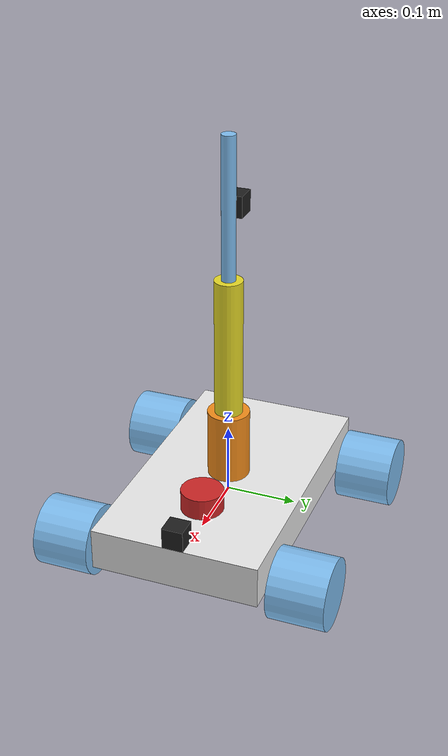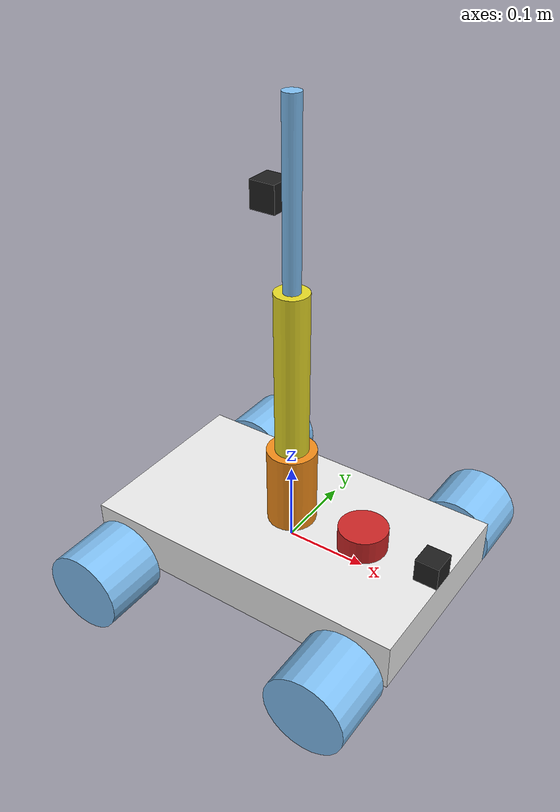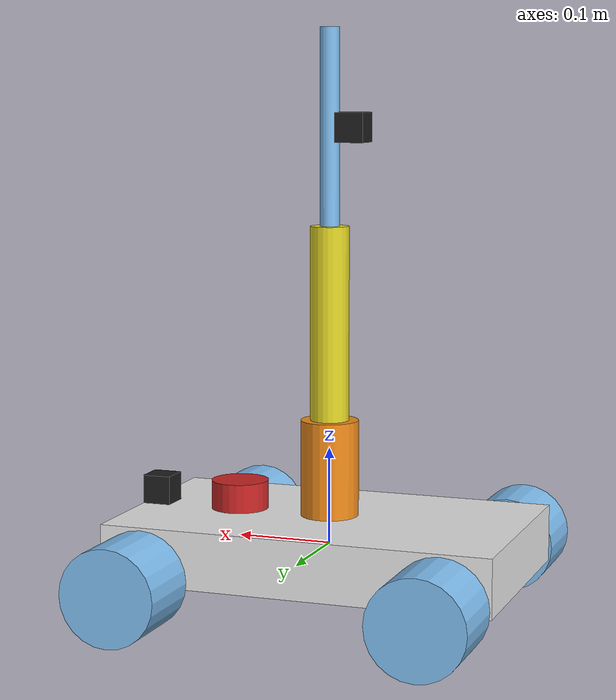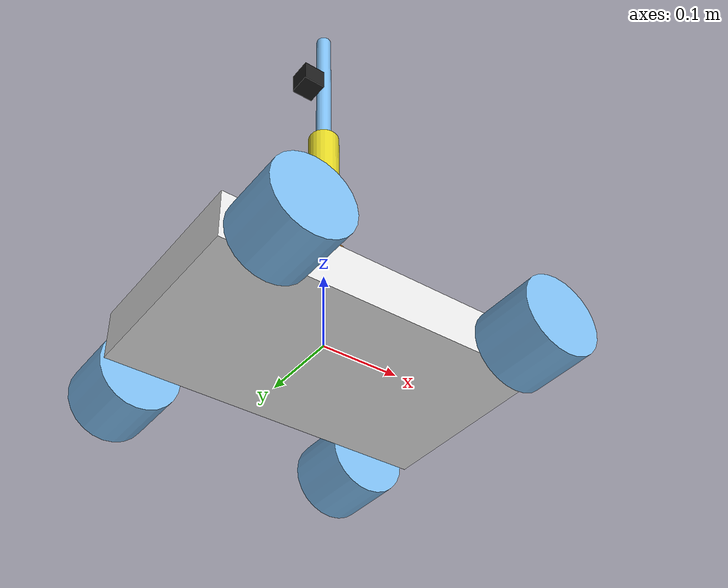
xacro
<?xml version="1.0" encoding="utf-8"?>
<robot name="arm_car" xmlns:xacro="http://ros.org/wiki/xacro">
    <xacro:property name="car_leng" value="0.410"/>
    <xacro:property name="car_width" value="0.238"/>
    <xacro:property name="car_height" value="0.06"/>
    <xacro:property name="car_mass" value="6.1"/>
    <xacro:property name="PI" value="3.1415926535897931"/>
    <xacro:property name="wheel_radius" value="0.05"/>
    <xacro:property name="wheel_height" value="0.08"/>
    <xacro:property name="wheel_mass" value="0.1"/>
    <xacro:property name="camera_low_box_size" value="0.03"/>
    <xacro:property name="laser_box_radius" value="0.03"/>
    <xacro:property name="laser_box_height" value="0.03"/>

    <xacro:property name="arm1_height" value="0.1"/>
    <xacro:property name="arm1_radius" value="0.03"/>
    <xacro:property name="arm1_mass" value="0.5"/>
    <xacro:property name="arm2_height" value="0.2"/>
    <xacro:property name="arm2_radius" value="0.02"/>
    <xacro:property name="arm2_mass" value="0.3"/>
    <xacro:property name="arm3_height" value="0.2"/>
    <xacro:property name="arm3_radius" value="0.01"/>
    <xacro:property name="arm3_mass" value="0.2"/>

    <xacro:include filename="$(find npu_sim)/urdf/car.gazebo.xacro"/>

    <xacro:macro name="wheel" params="wheel_name lr_reflect fb_reflect">
        <link name="${wheel_name}_wheel">
            <visual>
                <origin rpy="0 0 0" xyz="0 0 0"/>
                <geometry>
                    <cylinder length="${wheel_height}" radius="${wheel_radius}"/>
                </geometry>
            </visual>
            <inertial>
                <mass value="${wheel_mass}" />
                <inertia ixx="${wheel_mass*(3*wheel_radius*wheel_radius+wheel_height*wheel_height)/12.0}" ixy="0.0" ixz="0.0"
                         iyy="${wheel_mass*(3*wheel_radius*wheel_radius+wheel_height*wheel_height)/12.0}" iyz="0.0"
                         izz="${wheel_mass*wheel_radius*wheel_radius/2.0}" />
            </inertial>
            <collision>
                <origin rpy="0 0 0" xyz="0 0 0" />
                <geometry>
                    <cylinder length="${wheel_height}" radius="${wheel_radius}"/>
                </geometry>
            </collision>
        </link>

        <joint name="base_${wheel_name}_joint" type="fixed">
            <origin xyz="${0.156*fb_reflect} ${0.169*lr_reflect} -0.02" rpy="${PI/2} 0 0"/>
            <parent link="base_link"/>
            <child link="${wheel_name}_wheel"/>
        </joint>
    </xacro:macro>

    <link name="footprint"/>
    <joint name="foot_base_joint" type="fixed">
        <origin xyz="0 0 0" rpy="0 0 0"/>
        <parent link="footprint"/>
        <child link="base_link"/>
    </joint>
    <link name="base_link">
        <visual>
          <origin rpy="0 0 0" xyz="0 0 0"/>
          <geometry>
            <box size="${car_leng} ${car_width} ${car_height}" />
          </geometry>
        </visual>

        <inertial>
          <mass value="${car_mass}"/>
          <inertia ixx="0.0425" ixy="0.0" ixz="0.0" iyy="0.1136" iyz="0.0" izz="0.1561" />
        </inertial>

        <collision>
          <origin rpy="0 0 0" xyz="0 0 0" />
          <geometry>
            <box size="${car_leng} ${car_width} ${car_height}" />
          </geometry>
        </collision>
    </link>

    <xacro:wheel wheel_name="left_front" lr_reflect="1" fb_reflect="1"/>
    <xacro:wheel wheel_name="right_front" lr_reflect="-1" fb_reflect="1"/>
    <xacro:wheel wheel_name="right_back" lr_reflect="-1" fb_reflect="-1"/>
    <xacro:wheel wheel_name="left_back" lr_reflect="1" fb_reflect="-1"/>

    <link name="imu_link"/>
    <joint name="base_imu_joint" type="fixed">
        <origin xyz="0 0 0" rpy="0 0 0"/>
        <parent link="base_link"/>
        <child link="imu_link"/>
    </joint>

    <joint name="base_laser_joint" type="fixed">
        <origin xyz="0.1 0 ${(car_height+laser_box_height)/2}" rpy="0 0 0"/>
        <parent link="base_link"/>
        <child link="laser_link"/>
    </joint>
    <link name="laser_link">
        <visual>
            <origin rpy="0 0 0" xyz="0 0 0"/>
            <geometry>
                <cylinder radius="${laser_box_radius}" length="${laser_box_height}"/>
            </geometry>
        </visual>
        <inertial>
            <mass value="0.1"/>
            <inertia ixx="${0.1*(3*laser_box_radius*laser_box_radius+laser_box_height*laser_box_height)/12.0}" ixy="0.0" ixz="0.0"
                     iyy="${0.1*(3*laser_box_radius*laser_box_radius+laser_box_height*laser_box_height)/12.0}" iyz="0.0"
                     izz="${0.1*laser_box_radius*laser_box_radius/2.0}" />
        </inertial>
    </link>

    <joint name="base_camera_low_joint" type="continuous">
        <axis xyz="0 1 0"/>
        <origin xyz="${(car_leng-camera_low_box_size)/2} 0 ${(car_height+camera_low_box_size)/2}" rpy="0 0 0"/>
        <parent link="base_link"/>
        <child link="camera_low_link"/>
    </joint>
    <link name="camera_low_link">
        <visual>
            <origin rpy="0 0 0" xyz="0 0 0"/>
            <geometry>
                <box size="${camera_low_box_size} ${camera_low_box_size} ${camera_low_box_size}" />
            </geometry>
        </visual>
        <inertial>
            <mass value="0.05"/>
            <inertia ixx="${0.05*camera_low_box_size*camera_low_box_size/6.0}" ixy="0.0" ixz="0.0"
                     iyy="${0.05*camera_low_box_size*camera_low_box_size/6.0}" iyz="0.0"
                     izz="${0.05*camera_low_box_size*camera_low_box_size/6.0}" />
        </inertial>
    </link>

    <xacro:macro name="arm" params="joint_name last_arm_name arm_name z_shift radius height mass axis">
        <joint name="${joint_name}" type="revolute">
            <origin xyz="0 0 ${z_shift}" rpy="0 0 0"/>
            <parent link="${last_arm_name}"/>
            <child link="${arm_name}"/>
            <axis xyz="${axis}"/>
            <limit lower="-1" upper="1" effort="10.0" velocity="0.1"/>
            <dynamics damping="0.3"/>
<!--            damping big make some bug-->
        </joint>
        <link name="${arm_name}">
            <visual>
                <origin rpy="0 0 0" xyz="0 0 ${height/2}"/>
                <geometry>
                    <cylinder radius="${radius}" length="${height}"/>
                </geometry>
            </visual>
            <inertial>
                <origin rpy="0 0 0" xyz="0 0 ${height/2}"/>
                <mass value="${mass}"/>
                <inertia ixx="${mass*(3*radius*radius+height*height)/12.0}" ixy="0.0" ixz="0.0"
                         iyy="${mass*(3*radius*radius+height*height)/12.0}" iyz="0.0"
                         izz="${mass*radius*radius/2.0}" />
            </inertial>
        </link>
    </xacro:macro>

    <xacro:arm joint_name="base_arm1_joint" last_arm_name="base_link" arm_name="arm1_link" z_shift="${(car_height)/2}"
               radius="${arm1_radius}" height="${arm1_height}" mass="${arm1_mass}" axis="0 0 1"/>
    <xacro:arm joint_name="arm1_arm2_joint" last_arm_name="arm1_link" arm_name="arm2_link" z_shift="${arm1_height}"
               radius="${arm2_radius}" height="${arm2_height}" mass="${arm2_mass}" axis="0 1 0"/>
    <xacro:arm joint_name="arm2_arm3_joint" last_arm_name="arm2_link" arm_name="arm3_link" z_shift="${arm2_height}"
               radius="${arm3_radius}" height="${arm3_height}" mass="${arm3_mass}" axis="0 1 0"/>

    <joint name="arm3_camera_high_joint" type="fixed">
        <origin xyz="${-camera_low_box_size/2-arm3_radius} 0 ${arm3_height/2}" rpy="0 ${-PI/2} 0"/>
        <parent link="arm3_link"/>
        <child link="camera_high_link"/>
    </joint>

    <link name="camera_high_link">
        <visual>
            <origin rpy="0 0 0" xyz="0 0 0"/>
            <geometry>
                <box size="${camera_low_box_size} ${camera_low_box_size} ${camera_low_box_size}" />
            </geometry>
        </visual>
        <inertial>
            <mass value="0.05"/>
            <inertia ixx="${0.05*camera_low_box_size*camera_low_box_size/6.0}" ixy="0.0" ixz="0.0"
                     iyy="${0.05*camera_low_box_size*camera_low_box_size/6.0}" iyz="0.0"
                     izz="${0.05*camera_low_box_size*camera_low_box_size/6.0}" />
        </inertial>
    </link>
</robot>
